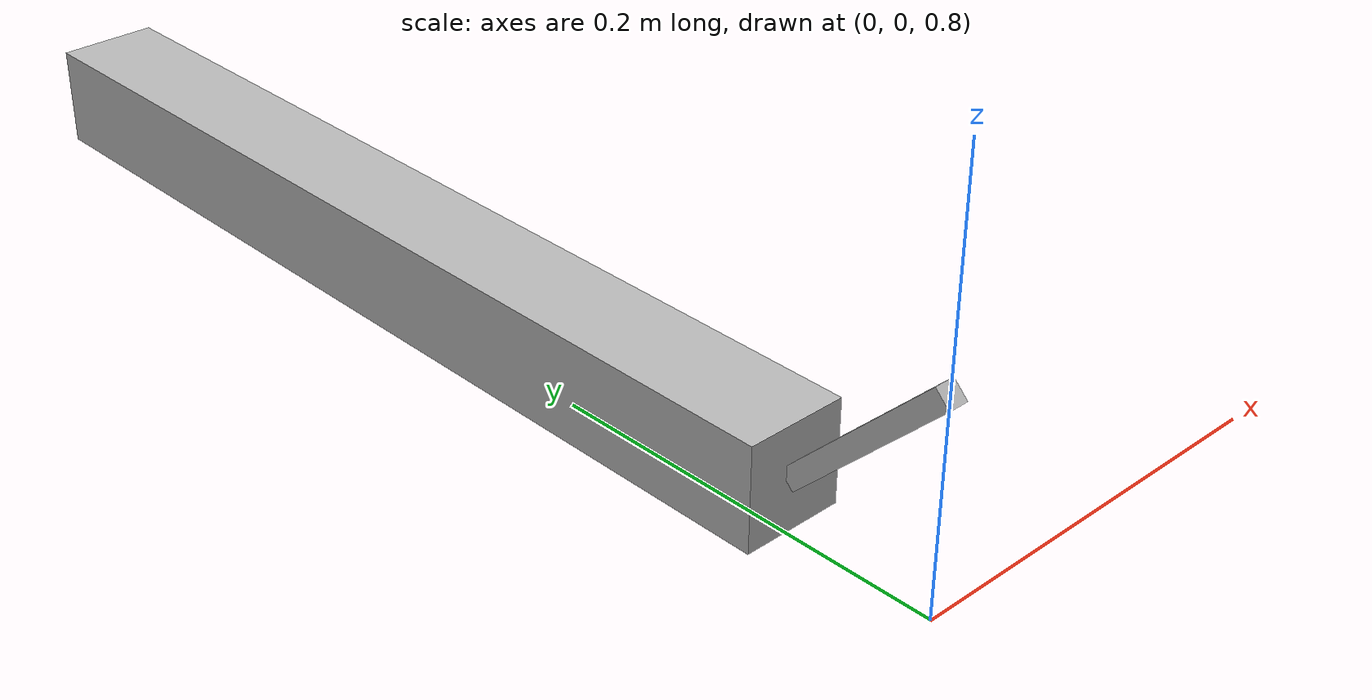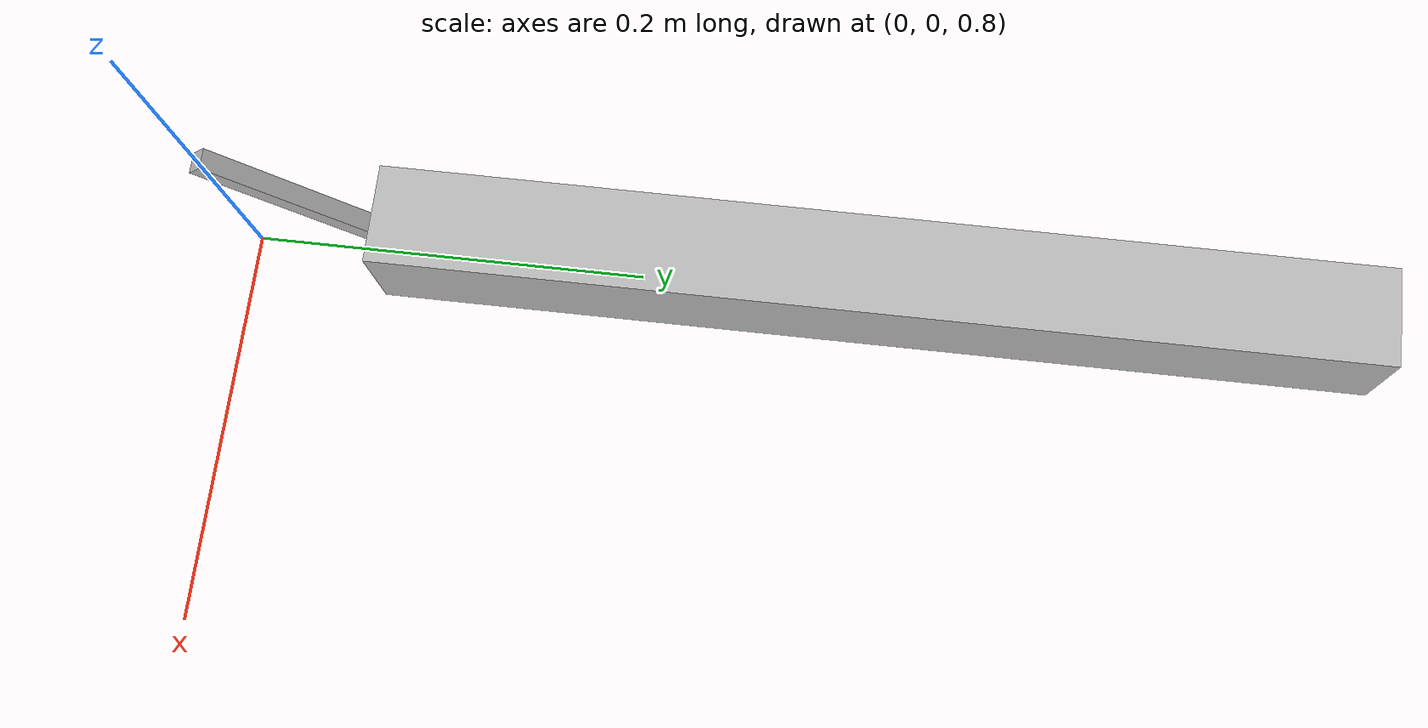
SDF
<?xml version="1.0" ?>
<sdf version="1.4">
  <world name="default">
    <physics type="ode">
      <gravity>0.100000 0.000000 -9.810000</gravity>
      <ode>
        <solver>
          <type>quick</type>
          <iters>250</iters>
          <precon_iters>0</precon_iters>
          <sor>1.400000</sor>
          <use_dynamic_moi_rescaling>1</use_dynamic_moi_rescaling>
        </solver>
        <constraints>
          <cfm>0.000000</cfm>
          <erp>0.200000</erp>
          <contact_max_correcting_vel>0.000000</contact_max_correcting_vel>
          <contact_surface_layer>0.00000</contact_surface_layer>
        </constraints>
      </ode>
      <bullet>
        <solver>
          <type>sequential_impulse</type>
          <iters>250</iters>
          <sor>1.400000</sor>
        </solver>
        <constraints>
          <cfm>0.000000</cfm>
          <erp>0.200000</erp>
          <split_impulse>true</split_impulse>
          <split_impulse_penetration_threshold>-0.01</split_impulse_penetration_threshold>
          <contact_surface_layer>0.01000</contact_surface_layer>
        </constraints>
      </bullet>
      <simbody>
        <accuracy>0.001</accuracy>
        <max_transient_velocity>0.01</max_transient_velocity>
        <contact>
          <stiffness>1e8</stiffness>
          <dissipation>10</dissipation>
          <static_friction>0.15</static_friction>
          <dynamic_friction>0.1</dynamic_friction>
          <viscous_friction>0.0</viscous_friction>
        </contact>
      </simbody>
      <real_time_update_rate>1000.000000</real_time_update_rate>
      <max_step_size>0.001000</max_step_size>
    </physics>

    <model name="inertia_ratio">
      <pose>0 0 0.9  0.7853981633974483 0 0</pose>
      <link name="upper_link">
        <pose>0 0 -0.05  0 0 0</pose>
        <inertial>
          <mass>0.02700000000000001</mass>
          <inertia>
            <ixx>2.272500000000001e-05</ixx>
            <iyy>2.272500000000001e-05</iyy>
            <izz>4.5000000000000035e-07</izz>
            <ixy>0.0</ixy>
            <ixz>0.0</ixz>
            <iyz>0.0</iyz>
          </inertia>
        </inertial>
        <collision name="collision">
          <geometry>
            <box>
              <size>0.010000000000000002 0.010000000000000002 0.1</size>
            </box>
          </geometry>
        </collision>
        <visual name="visual">
          <geometry>
            <box>
              <size>0.010000000000000002 0.010000000000000002 0.1</size>
            </box>
          </geometry>
        </visual>
      </link>
      <joint name="upper_joint" type="revolute">
        <pose>0 0 0.05  0 0 0</pose>
        <parent>world</parent>
        <child>upper_link</child>
        <axis>
          <xyz>1 0 0</xyz>
        </axis>
      </joint>
      <link name="lower_link">
        <pose>0 0.17677669529663687 -0.2767766952966369  0.7853981633974483 0 0</pose>
        <inertial>
          <mass>3.375</mass>
          <inertia>
            <ixx>0.071015625</ixx>
            <iyy>0.071015625</iyy>
            <izz>0.0014062500000000004</izz>
            <ixy>0.0</ixy>
            <ixz>0.0</ixz>
            <iyz>0.0</iyz>
          </inertia>
        </inertial>
        <collision name="collision">
          <geometry>
            <box>
              <size>0.05 0.05 0.5</size>
            </box>
          </geometry>
        </collision>
        <visual name="visual">
          <geometry>
            <box>
              <size>0.05 0.05 0.5</size>
            </box>
          </geometry>
        </visual>
      </link>
      <joint name="lower_joint" type="revolute">
        <pose>0 0 0.25  0 0 0</pose>
        <parent>upper_link</parent>
        <child>lower_link</child>
        <axis>
          <xyz>1 0 0</xyz>
        </axis>
      </joint>
    </model>
  </world>
</sdf>
